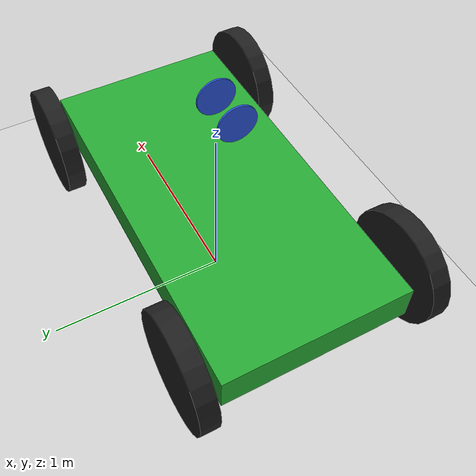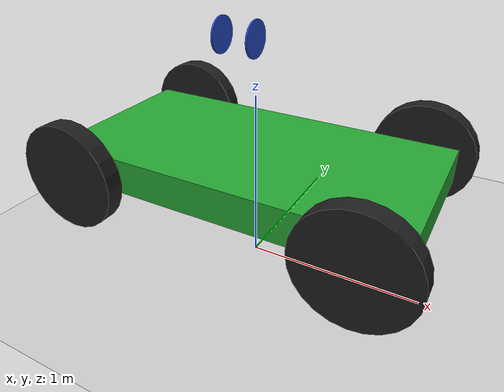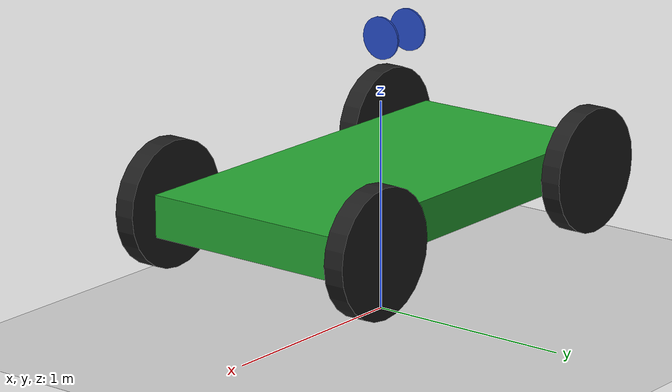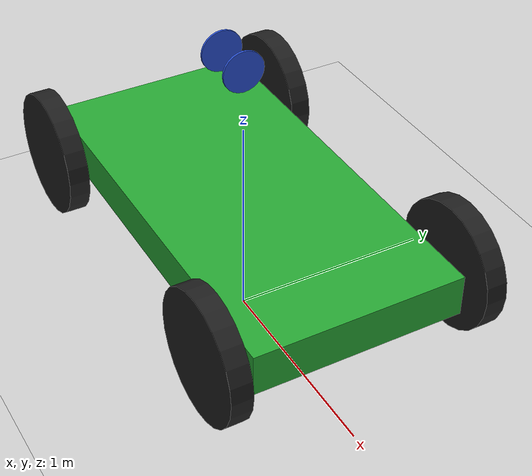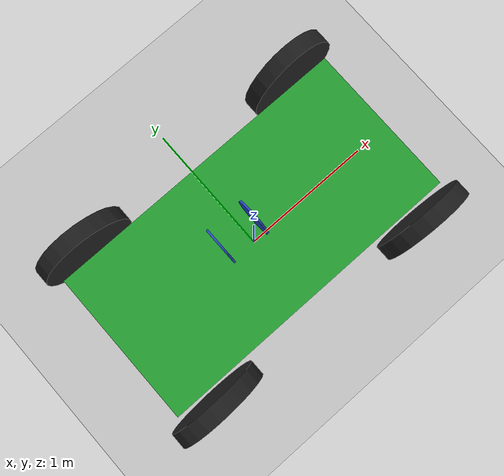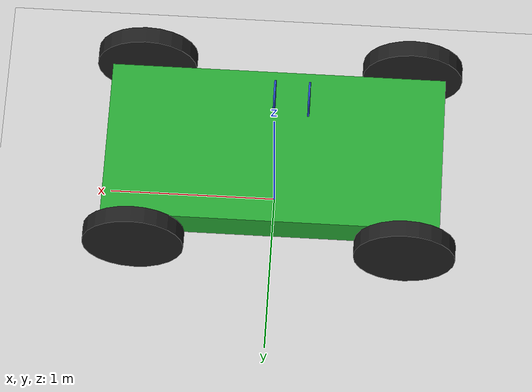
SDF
<?xml version="1.0" ?>
<sdf version="1.4">
  <world name="default">
    <physics type="ode">
      <gravity>0 0 -9.8</gravity>
      <ode>
        <solver>
          <type>quick</type>
          <iters>40</iters>
          <sor>1.0</sor>
        </solver>
        <constraints>
          <cfm>0.0</cfm>
          <erp>0.2</erp>
          <contact_max_correcting_vel>100.0</contact_max_correcting_vel>
          <contact_surface_layer>0.0</contact_surface_layer>
        </constraints>
      </ode>
      <max_step_size>0.001</max_step_size>
    </physics>
    <!-- A global light source -->
    <include>
      <uri>model://sun</uri>
    </include>
    <!-- A ground plane -->
    <include>
      <uri>model://ground_plane</uri>
    </include>
    <include>
      <uri>model://model</uri>
      <pose>0 0 0.3 0 0 0</pose>
    </include>
  </world>
</sdf>

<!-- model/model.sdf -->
<sdf version="1.4">
  <model name="car">
<pose>0 0 0 0 0 0.1</pose>
<!----------------------------------------------------------------------------------- Chassis ------------->
    <link name="chassis">
      <pose>0 0 0.3 0 0 0</pose>
      <inertial>
        <mass>10</mass>
		   <pose>0 0 0 0 0 0</pose>
        <inertia>
	      <ixx>1</ixx>  <ixy>0</ixy>  <ixz>0</ixz>  <iyy>1</iyy>  <iyz>0</iyz>  <izz>0</izz>
        </inertia>
      </inertial>

      <collision name="collision">
        <geometry>
          <box><size>2.0 1.0 0.2</size></box>
        </geometry>
      </collision>
      <visual name="visual">
        <geometry>
          <box><size>2.0 1.0 0.2</size></box>
        </geometry>
        <material>
          <script>
            <uri>file://media/materials/scripts/gazebo.material</uri>
            <name>Gazebo/Green</name>
          </script>
        </material>
      </visual>
    </link>
<!----------------------------------------------------------------------------------- Back Wheels ------------->
    <link name="back_right_wheel">
      <pose>-0.8 -0.6 0.3 0 1.5707 1.5707</pose>
      <inertial>
        <mass>1</mass>
		   <pose>0 0 0 0 0 0</pose>
        <inertia>
	      <ixx>1</ixx>  <ixy>0</ixy>  <ixz>0</ixz>  <iyy>1</iyy>  <iyz>0</iyz>  <izz>0</izz>
        </inertia>
      </inertial>
      <collision name="collision">
        <geometry>
          <cylinder><radius>0.3</radius><length>0.1</length></cylinder>
        </geometry>
        <surface>
			<friction>
				<ode>
					<mu>1</mu>
					<mu2>1</mu2>
					<slip1>0.0</slip1>
					<slip2>0.0</slip2>
				</ode>
			</friction>
		</surface>
      </collision>
      <visual name="visual">
        <geometry>
          <cylinder><radius>0.3</radius><length>0.1</length></cylinder>
        </geometry>
        <material>
          <script>
            <uri>file://media/materials/scripts/gazebo.material</uri>
            <name>Gazebo/Black</name>
        </script>
      </material>
      </visual>
    </link>
    <link name="back_left_wheel">
      <pose>-0.8 0.6 0.3 0 1.5707 1.5707</pose>
      <inertial>
        <mass>1</mass>
		   <pose>0 0 0 0 0 0</pose>
        <inertia>
	      <ixx>1</ixx>  <ixy>0</ixy>  <ixz>0</ixz>  <iyy>1</iyy>  <iyz>0</iyz>  <izz>0</izz>
        </inertia>
      </inertial>
      <collision name="collision">
        <geometry>
          <cylinder><radius>0.3</radius><length>0.1</length></cylinder>
        </geometry>
        <surface>
			<friction>
				<ode>
					<mu>1</mu>
					<mu2>1</mu2>
					<slip1>0.0</slip1>
					<slip2>0.0</slip2>
				</ode>
			</friction>
		</surface>
      </collision>
      <visual name="visual">
        <geometry>
          <cylinder><radius>0.3</radius><length>0.1</length></cylinder>
        </geometry>
        <material>
          <script>
            <uri>file://media/materials/scripts/gazebo.material</uri>
            <name>Gazebo/Black</name>
        </script>
      </material>
      </visual>
    </link>
<!----------------------------------------------------------------------------------- Front Wheels ------------->
    <link name="front_left_wheel">
      <pose>0.8 0.6 0.3 0 1.5707 1.5707</pose>
      <inertial>
        <mass>1</mass>
		   <pose>0 0 0 0 0 0</pose>
        <inertia>
	      <ixx>1</ixx>  <ixy>0</ixy>  <ixz>0</ixz>  <iyy>1</iyy>  <iyz>0</iyz>  <izz>0</izz>
        </inertia>
      </inertial>
      <collision name="collision">
        <geometry>
          <cylinder><radius>0.3</radius><length>0.1</length></cylinder>
        </geometry>
        <surface>
			<friction>
				<ode>
					<mu>1</mu>
					<mu2>1</mu2>
					<slip1>0.0</slip1>
					<slip2>0.0</slip2>
				</ode>
			</friction>
		</surface>
      </collision>
      <visual name="visual">
        <geometry>
          <cylinder><radius>0.3</radius><length>0.1</length></cylinder>
        </geometry>
        <material>
          <script>
            <uri>file://media/materials/scripts/gazebo.material</uri>
            <name>Gazebo/Black</name>
          </script>
        </material>
      </visual>
    </link>
    <link name="front_right_wheel">
      <pose>0.8 -0.6 0.3 0 1.5707 1.5707</pose>
      <inertial>
        <mass>1</mass>
		   <pose>0 0 0 0 0 0</pose>
        <inertia>
	      <ixx>1</ixx>  <ixy>0</ixy>  <ixz>0</ixz>  <iyy>1</iyy>  <iyz>0</iyz>  <izz>0</izz>
        </inertia>
      </inertial>
      <collision name="collision">
        <geometry>
          <cylinder><radius>0.3</radius><length>0.1</length></cylinder>
        </geometry>
        <surface>
			<friction>
				<ode>
					<mu>1</mu>
					<mu2>1</mu2>
					<slip1>0.0</slip1>
					<slip2>0.0</slip2>
				</ode>
			</friction>
		</surface>
      </collision>
      <visual name="visual">
        <geometry>
          <cylinder><radius>0.3</radius><length>0.1</length></cylinder>
        </geometry>
        <material>
          <script>
            <uri>file://media/materials/scripts/gazebo.material</uri>
            <name>Gazebo/Black</name>
        </script>
      </material>
      </visual>
    </link>
<!----------------------------------------------------------------------------------- Time Pass ------------->
    <link name="ref_1">
      <pose>0.0 0.0 1.0 0 1.5707 0</pose>
      <collision name="ref_1_collision">
        <geometry>
          <cylinder><radius>0.1</radius><length>0.01</length></cylinder>
        </geometry>
      </collision>
      <visual name="ref_1_visual">
        <geometry>
          <cylinder><radius>0.1</radius><length>0.01</length></cylinder>
        </geometry>
        <material>
          <script>
            <uri>file://media/materials/scripts/gazebo.material</uri>
            <name>Gazebo/Blue</name>
          </script>
        </material>
      </visual>
    </link>
    <joint type="revolute" name="ref_1_joint">
      <parent>chassis</parent>
      <child>ref_1</child>
      <axis>
        <xyz>1 0 0</xyz>
        <limit><lower>-7.853</lower><upper>7.853</upper></limit>
      </axis>
    </joint>

    <link name="ref_2">
      <pose>-0.2 0.0 1.0 0 1.5707 0</pose>
      <collision name="ref_2_collision">
        <geometry>
          <cylinder><radius>0.1</radius><length>0.01</length></cylinder>
        </geometry>
      </collision>
      <visual name="ref_2_visual">
        <geometry>
          <cylinder><radius>0.1</radius><length>0.01</length></cylinder>
        </geometry>
        <material>
          <script>
            <uri>file://media/materials/scripts/gazebo.material</uri>
            <name>Gazebo/Blue</name>
          </script>
        </material>
      </visual>
    </link>
    <joint type="revolute" name="ref_2_joint">
      <parent>chassis</parent>
      <child>ref_2</child>
      <axis>
        <xyz>1 0 0</xyz>
        <limit><lower>-7.853</lower><upper>7.853</upper></limit>
      </axis>
    </joint>

<!----------------------------------------------------------------------------------- Front Left Joint ------------->
    <joint type="revolute2" name="front_left_joint">
      <parent>chassis</parent>
      <child>front_left_wheel</child>
      <axis>
        <xyz>0 0 1</xyz>
        <limit>
          <lower>-1.571</lower>
          <upper>1.571</upper>
        </limit>
      </axis>
      <axis2>
        <xyz>0 1 0</xyz>
      </axis2>
    </joint>
<!----------------------------------------------------------------------------------- Front Right Joint ------------->
    <joint type="revolute2" name="front_right_joint">
      <parent>chassis</parent>
      <child>front_right_wheel</child>
      <axis><xyz>0 0 1</xyz>
        <limit>
          <lower>-1.571</lower>
          <upper>1.571</upper>
        </limit>
      </axis>
      <axis2>
        <xyz>0 1 0</xyz>
      </axis2>
    </joint>

<!----------------------------------------------------------------------------------- Back Left Joint ------------->
    <joint type="revolute" name="back_left_joint">
      <parent>chassis</parent>
      <child>back_left_wheel</child>
      <axis>
        <xyz>0 1 0</xyz>
      </axis>
    </joint>

<!----------------------------------------------------------------------------------- Back Right Joint ------------->
    <joint type="revolute" name="back_right_joint">
      <parent>chassis</parent>
      <child>back_right_wheel</child>
      <axis>
        <xyz>0 1 0</xyz>
      </axis>
    </joint>
    <!--plugin name="libMotionControl" filename="libMotionControl.so"-->
    <!--plugin name="libYawPID" filename="libYawPID.so"-->

    <plugin name="libplugin" filename="libplugin.so">
      <PID_P>50</PID_P>
      <PID_I>0</PID_I>
      <PID_D>0</PID_D>
      <PID_I_MAX>0</PID_I_MAX>
      <PID_I_MIN>0</PID_I_MIN>
      <PID_CMD_MAX>300</PID_CMD_MAX>
      <PID_CMD_MIN>-300</PID_CMD_MIN>
      <set_vel>1</set_vel>
      <set_theta>0.8</set_theta>
      <lateral_shift>2</lateral_shift>
    </plugin>
  </model>
</sdf>
